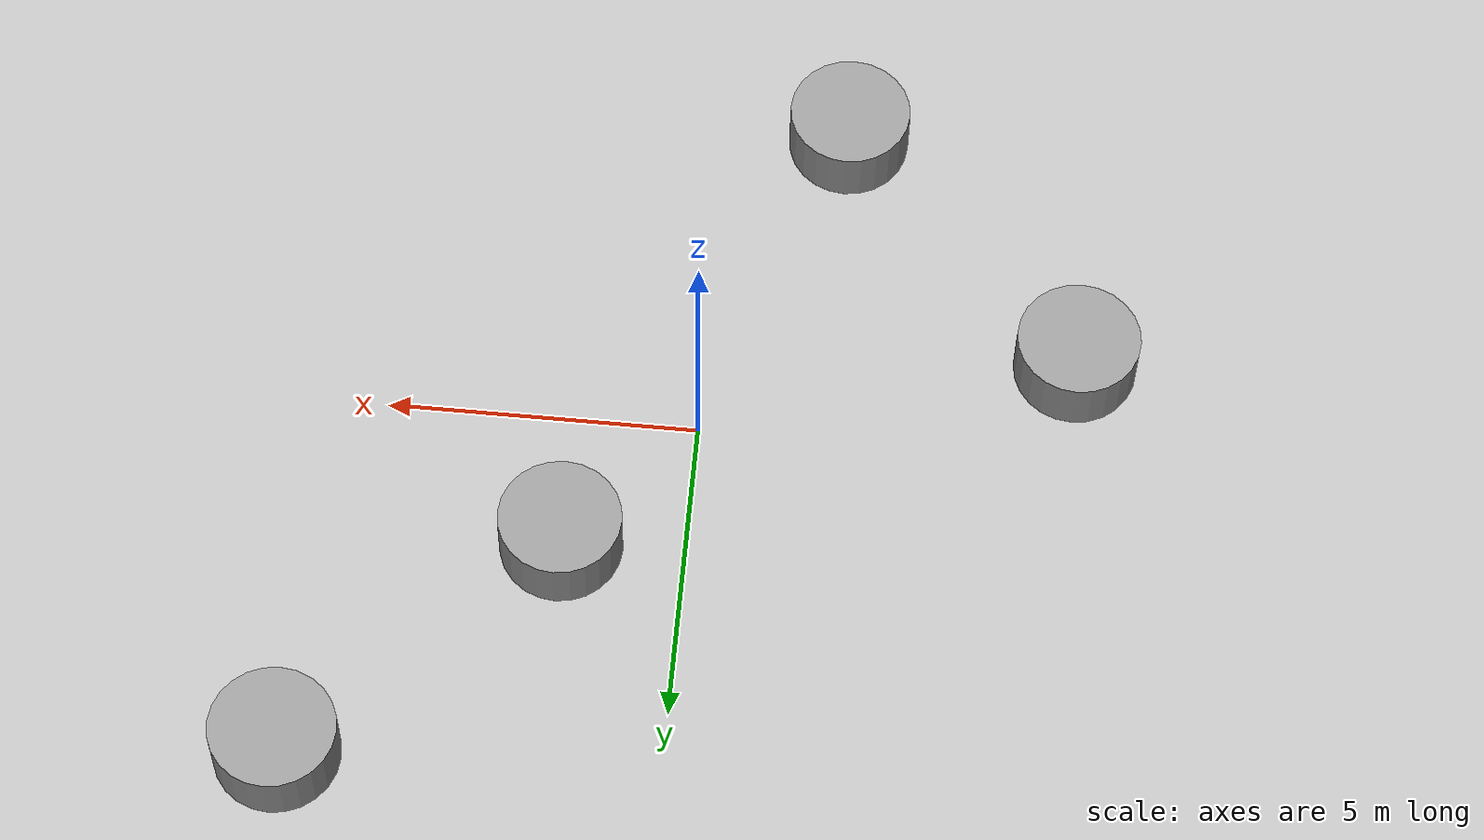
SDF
<?xml version='1.0'?>
<sdf version='1.6'>
  <model name='cylinders'>
    <link name='link_0'>
      <pose frame=''>6 6 0 0 -0 0</pose>
      <inertial>
        <mass>4.0182</mass>
        <inertia>
          <ixx>1.34397</ixx>
          <ixy>0</ixy>
          <ixz>0</ixz>
          <iyy>1.34397</iyy>
          <iyz>0</iyz>
          <izz>2.01825</izz>
        </inertia>
        <pose frame=''>0 0 0 0 -0 0</pose>
      </inertial>
      <self_collide>0</self_collide>
      <kinematic>0</kinematic>
      <gravity>1</gravity>
      <visual name='visual'>
        <pose frame=''>0 0 0 0 -0 0</pose>
        <geometry>
          <cylinder>
            <radius>1.00228</radius>
            <length>1</length>
          </cylinder>
        </geometry>
        <material>
          <lighting>1</lighting>
          <script>
            <uri>file://media/materials/scripts/gazebo.material</uri>
            <name>Gazebo/Grey</name>
          </script>
          <ambient>1 1 1 1</ambient>
          <diffuse>0.7 0.7 0.7 1</diffuse>
          <specular>0.01 0.01 0.01 1</specular>
          <emissive>0 0 0 1</emissive>
          <shader type='vertex'>
            <normal_map>__default__</normal_map>
          </shader>
        </material>
        <cast_shadows>1</cast_shadows>
        <transparency>0</transparency>
      </visual>
      <collision name='collision'>
        <laser_retro>0</laser_retro>
        <max_contacts>10</max_contacts>
        <pose frame=''>0 0 0 0 -0 0</pose>
        <geometry>
          <cylinder>
            <radius>1.00228</radius>
            <length>1</length>
          </cylinder>
        </geometry>
        <surface>
          <friction>
            <ode>
              <mu>1</mu>
              <mu2>1</mu2>
              <fdir1>0 0 0</fdir1>
              <slip1>0</slip1>
              <slip2>0</slip2>
            </ode>
            <torsional>
              <coefficient>1</coefficient>
              <patch_radius>0</patch_radius>
              <surface_radius>0</surface_radius>
              <use_patch_radius>1</use_patch_radius>
              <ode>
                <slip>0</slip>
              </ode>
            </torsional>
          </friction>
          <bounce>
            <restitution_coefficient>0</restitution_coefficient>
            <threshold>1e+06</threshold>
          </bounce>
          <contact>
            <collide_without_contact>0</collide_without_contact>
            <collide_without_contact_bitmask>1</collide_without_contact_bitmask>
            <collide_bitmask>1</collide_bitmask>
            <ode>
              <soft_cfm>0</soft_cfm>
              <soft_erp>0.2</soft_erp>
              <kp>1e+13</kp>
              <kd>1</kd>
              <max_vel>0.01</max_vel>
              <min_depth>0</min_depth>
            </ode>
            <bullet>
              <split_impulse>1</split_impulse>
              <split_impulse_penetration_threshold>-0.01</split_impulse_penetration_threshold>
              <soft_cfm>0</soft_cfm>
              <soft_erp>0.2</soft_erp>
              <kp>1e+13</kp>
              <kd>1</kd>
            </bullet>
          </contact>
        </surface>
      </collision>
    </link>
    <link name='link_1'>
      <pose frame=''>2 2 0 0 -0 0</pose>
      <inertial>
        <mass>3.90973</mass>
        <inertia>
          <ixx>1.28118</ixx>
          <ixy>0</ixy>
          <ixz>0</ixz>
          <iyy>1.28118</iyy>
          <iyz>0</iyz>
          <izz>1.91075</izz>
        </inertia>
        <pose frame=''>0 0 0 0 -0 0</pose>
      </inertial>
      <self_collide>0</self_collide>
      <kinematic>0</kinematic>
      <gravity>1</gravity>
      <visual name='visual'>
        <pose frame=''>0 0 0 0 -0 0</pose>
        <geometry>
          <cylinder>
            <radius>0.988649</radius>
            <length>1</length>
          </cylinder>
        </geometry>
        <material>
          <lighting>1</lighting>
          <script>
            <uri>file://media/materials/scripts/gazebo.material</uri>
            <name>Gazebo/Grey</name>
          </script>
          <ambient>1 1 1 1</ambient>
          <diffuse>0.7 0.7 0.7 1</diffuse>
          <specular>0.01 0.01 0.01 1</specular>
          <emissive>0 0 0 1</emissive>
          <shader type='vertex'>
            <normal_map>__default__</normal_map>
          </shader>
        </material>
        <cast_shadows>1</cast_shadows>
        <transparency>0</transparency>
      </visual>
      <collision name='collision'>
        <laser_retro>0</laser_retro>
        <max_contacts>10</max_contacts>
        <pose frame=''>0 0 0 0 -0 0</pose>
        <geometry>
          <cylinder>
            <radius>0.988649</radius>
            <length>1</length>
          </cylinder>
        </geometry>
        <surface>
          <friction>
            <ode>
              <mu>1</mu>
              <mu2>1</mu2>
              <fdir1>0 0 0</fdir1>
              <slip1>0</slip1>
              <slip2>0</slip2>
            </ode>
            <torsional>
              <coefficient>1</coefficient>
              <patch_radius>0</patch_radius>
              <surface_radius>0</surface_radius>
              <use_patch_radius>1</use_patch_radius>
              <ode>
                <slip>0</slip>
              </ode>
            </torsional>
          </friction>
          <bounce>
            <restitution_coefficient>0</restitution_coefficient>
            <threshold>1e+06</threshold>
          </bounce>
          <contact>
            <collide_without_contact>0</collide_without_contact>
            <collide_without_contact_bitmask>1</collide_without_contact_bitmask>
            <collide_bitmask>1</collide_bitmask>
            <ode>
              <soft_cfm>0</soft_cfm>
              <soft_erp>0.2</soft_erp>
              <kp>1e+13</kp>
              <kd>1</kd>
              <max_vel>0.01</max_vel>
              <min_depth>0</min_depth>
            </ode>
            <bullet>
              <split_impulse>1</split_impulse>
              <split_impulse_penetration_threshold>-0.01</split_impulse_penetration_threshold>
              <soft_cfm>0</soft_cfm>
              <soft_erp>0.2</soft_erp>
              <kp>1e+13</kp>
              <kd>1</kd>
            </bullet>
          </contact>
        </surface>
      </collision>
    </link>
    <link name='link_2'>
      <pose frame=''>-6 -2 0 0 -0 0</pose>
      <inertial>
        <mass>4.00437</mass>
        <inertia>
          <ixx>1.33588</ixx>
          <ixy>0</ixy>
          <ixz>0</ixz>
          <iyy>1.33588</iyy>
          <iyz>0</iyz>
          <izz>2.00437</izz>
        </inertia>
        <pose frame=''>0 0 0 0 -0 0</pose>
      </inertial>
      <self_collide>0</self_collide>
      <kinematic>0</kinematic>
      <gravity>1</gravity>
      <visual name='visual'>
        <pose frame=''>0 0 0 0 -0 0</pose>
        <geometry>
          <cylinder>
            <radius>1.00055</radius>
            <length>1</length>
          </cylinder>
        </geometry>
        <material>
          <lighting>1</lighting>
          <script>
            <uri>file://media/materials/scripts/gazebo.material</uri>
            <name>Gazebo/Grey</name>
          </script>
          <ambient>1 1 1 1</ambient>
          <diffuse>0.7 0.7 0.7 1</diffuse>
          <specular>0.01 0.01 0.01 1</specular>
          <emissive>0 0 0 1</emissive>
          <shader type='vertex'>
            <normal_map>__default__</normal_map>
          </shader>
        </material>
        <cast_shadows>1</cast_shadows>
        <transparency>0</transparency>
      </visual>
      <collision name='collision'>
        <laser_retro>0</laser_retro>
        <max_contacts>10</max_contacts>
        <pose frame=''>0 0 0 0 -0 0</pose>
        <geometry>
          <cylinder>
            <radius>1.00055</radius>
            <length>1</length>
          </cylinder>
        </geometry>
        <surface>
          <friction>
            <ode>
              <mu>1</mu>
              <mu2>1</mu2>
              <fdir1>0 0 0</fdir1>
              <slip1>0</slip1>
              <slip2>0</slip2>
            </ode>
            <torsional>
              <coefficient>1</coefficient>
              <patch_radius>0</patch_radius>
              <surface_radius>0</surface_radius>
              <use_patch_radius>1</use_patch_radius>
              <ode>
                <slip>0</slip>
              </ode>
            </torsional>
          </friction>
          <bounce>
            <restitution_coefficient>0</restitution_coefficient>
            <threshold>1e+06</threshold>
          </bounce>
          <contact>
            <collide_without_contact>0</collide_without_contact>
            <collide_without_contact_bitmask>1</collide_without_contact_bitmask>
            <collide_bitmask>1</collide_bitmask>
            <ode>
              <soft_cfm>0</soft_cfm>
              <soft_erp>0.2</soft_erp>
              <kp>1e+13</kp>
              <kd>1</kd>
              <max_vel>0.01</max_vel>
              <min_depth>0</min_depth>
            </ode>
            <bullet>
              <split_impulse>1</split_impulse>
              <split_impulse_penetration_threshold>-0.01</split_impulse_penetration_threshold>
              <soft_cfm>0</soft_cfm>
              <soft_erp>0.2</soft_erp>
              <kp>1e+13</kp>
              <kd>1</kd>
            </bullet>
          </contact>
        </surface>
      </collision>
    </link>
    <link name='link_3'>
      <pose frame=''>-2 -6 0 0 -0 0</pose>
      <inertial>
        <mass>3.96789</mass>
        <inertia>
          <ixx>1.31467</ixx>
          <ixy>0</ixy>
          <ixz>0</ixz>
          <iyy>1.31467</iyy>
          <iyz>0</iyz>
          <izz>1.96802</izz>
        </inertia>
        <pose frame=''>0 0 0 0 -0 0</pose>
      </inertial>
      <self_collide>0</self_collide>
      <kinematic>0</kinematic>
      <gravity>1</gravity>
      <visual name='visual'>
        <pose frame=''>0 0 0 0 -0 0</pose>
        <geometry>
          <cylinder>
            <radius>0.995977</radius>
            <length>1</length>
          </cylinder>
        </geometry>
        <material>
          <lighting>1</lighting>
          <script>
            <uri>file://media/materials/scripts/gazebo.material</uri>
            <name>Gazebo/Grey</name>
          </script>
          <ambient>1 1 1 1</ambient>
          <diffuse>0.7 0.7 0.7 1</diffuse>
          <specular>0.01 0.01 0.01 1</specular>
          <emissive>0 0 0 1</emissive>
          <shader type='vertex'>
            <normal_map>__default__</normal_map>
          </shader>
        </material>
        <cast_shadows>1</cast_shadows>
        <transparency>0</transparency>
      </visual>
      <collision name='collision'>
        <laser_retro>0</laser_retro>
        <max_contacts>10</max_contacts>
        <pose frame=''>0 0 0 0 -0 0</pose>
        <geometry>
          <cylinder>
            <radius>0.995977</radius>
            <length>1</length>
          </cylinder>
        </geometry>
        <surface>
          <friction>
            <ode>
              <mu>1</mu>
              <mu2>1</mu2>
              <fdir1>0 0 0</fdir1>
              <slip1>0</slip1>
              <slip2>0</slip2>
            </ode>
            <torsional>
              <coefficient>1</coefficient>
              <patch_radius>0</patch_radius>
              <surface_radius>0</surface_radius>
              <use_patch_radius>1</use_patch_radius>
              <ode>
                <slip>0</slip>
              </ode>
            </torsional>
          </friction>
          <bounce>
            <restitution_coefficient>0</restitution_coefficient>
            <threshold>1e+06</threshold>
          </bounce>
          <contact>
            <collide_without_contact>0</collide_without_contact>
            <collide_without_contact_bitmask>1</collide_without_contact_bitmask>
            <collide_bitmask>1</collide_bitmask>
            <ode>
              <soft_cfm>0</soft_cfm>
              <soft_erp>0.2</soft_erp>
              <kp>1e+13</kp>
              <kd>1</kd>
              <max_vel>0.01</max_vel>
              <min_depth>0</min_depth>
            </ode>
            <bullet>
              <split_impulse>1</split_impulse>
              <split_impulse_penetration_threshold>-0.01</split_impulse_penetration_threshold>
              <soft_cfm>0</soft_cfm>
              <soft_erp>0.2</soft_erp>
              <kp>1e+13</kp>
              <kd>1</kd>
            </bullet>
          </contact>
        </surface>
      </collision>
    </link>
    <static>0</static>
    <allow_auto_disable>1</allow_auto_disable>
  </model>
</sdf>
